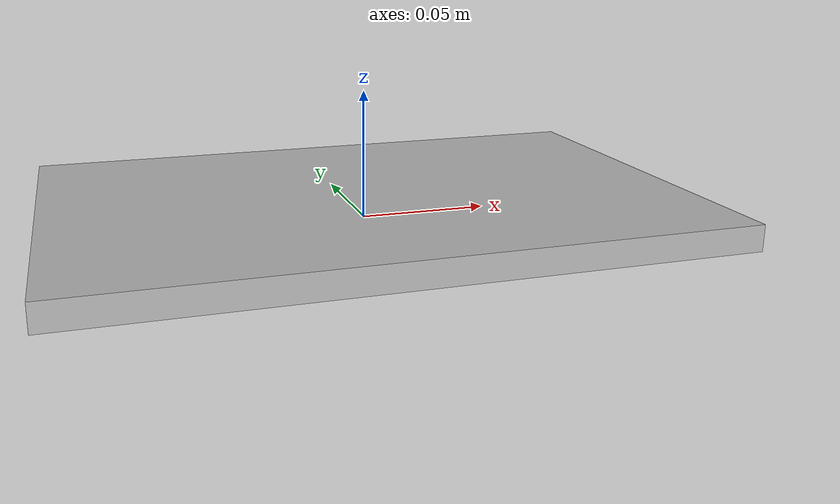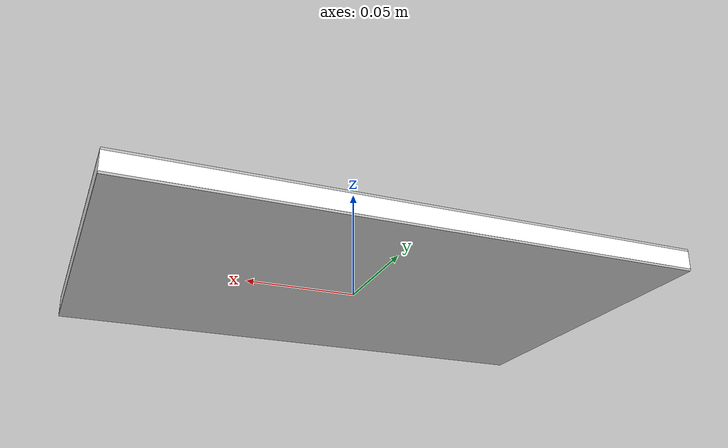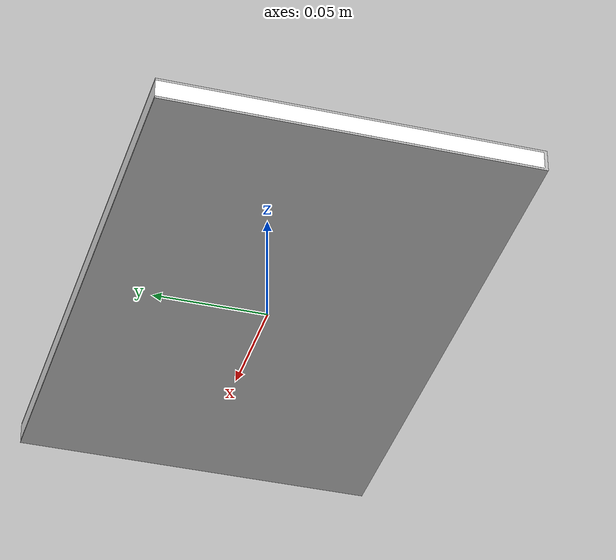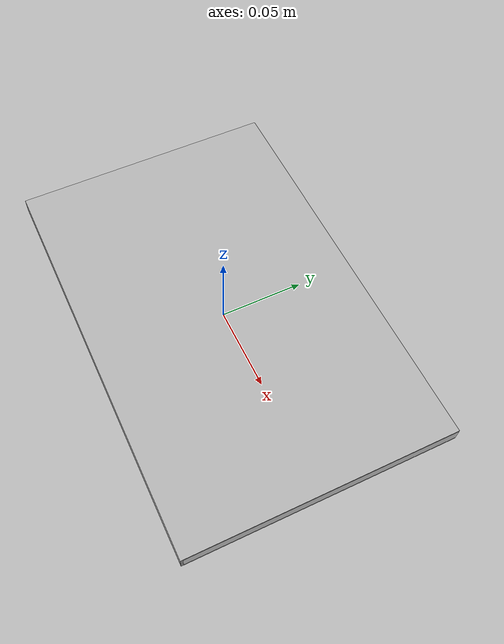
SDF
<?xml version='1.0'?>
<sdf version='1.6'>
  <model name='book_21'>
    <link name='cover'>
      <pose frame=''>0 -0.000108 0.005 0 -0 0</pose>
      <self_collide>0</self_collide>
      <kinematic>0</kinematic>
      <gravity>1</gravity>
      <visual name='visual'>
        <geometry>
          <box>
            <size>0.245 0.16 0.01</size>
          </box>
        </geometry>
	<material>
          <script>
            <uri>model://book_21/materials/scripts</uri>
            <uri>model://book_21/materials/textures</uri>
            <name>book_21</name>
          </script>
        </material>
        <cast_shadows>1</cast_shadows>
        <transparency>0</transparency>
      </visual>
      <collision name='collision'>
        <laser_retro>0</laser_retro>
        <max_contacts>10</max_contacts>
          <geometry>
          <box>
            <size>0.245 0.16 0.01</size>
          </box>
        </geometry>
       </collision>
    </link>
    <link name='page'>
      <pose frame=''>0 0.000608 0.005 0 -0 0</pose>
       <visual name='visual'>
        <pose frame=''>0 0 0 0 -0 0</pose>
        <geometry>
          <box>
            <size>0.24502 0.15862 0.008</size>
          </box>
        </geometry>
        <material>
          <lighting>1</lighting>
           <ambient>1 1 1 1</ambient>
          <diffuse>1 1 1 1</diffuse>
          <specular>0.01 0.01 0.01 1</specular>
          <emissive>0 0 0 1</emissive>
          <shader type='vertex'>
            <normal_map>__default__</normal_map>
          </shader>
        </material>
        <cast_shadows>1</cast_shadows>
        <transparency>0</transparency>
      </visual>
      <collision name='collision'>
        <laser_retro>0</laser_retro>
        <max_contacts>10</max_contacts>
        <pose frame=''>0 0 0 0 -0 0</pose>
        <geometry>
          <box>
            <size>0.245 0.16 0.008</size>
          </box>
        </geometry>
      </collision>
    </link>
    <static>1</static>
    <allow_auto_disable>1</allow_auto_disable>
  </model>
</sdf>
